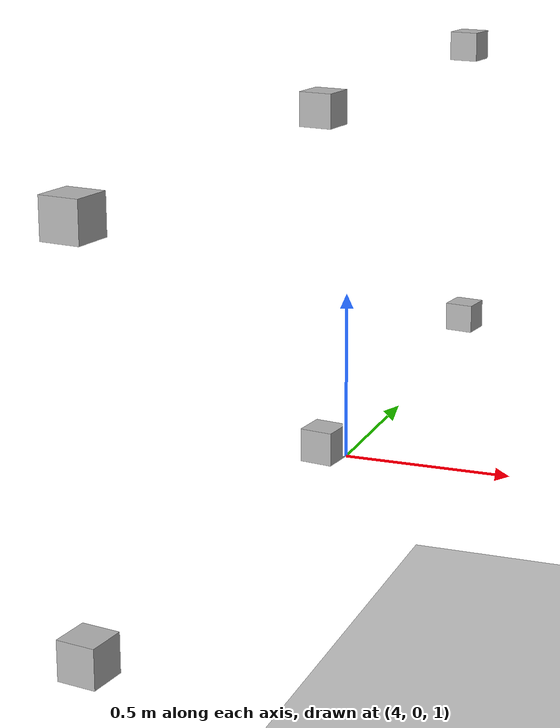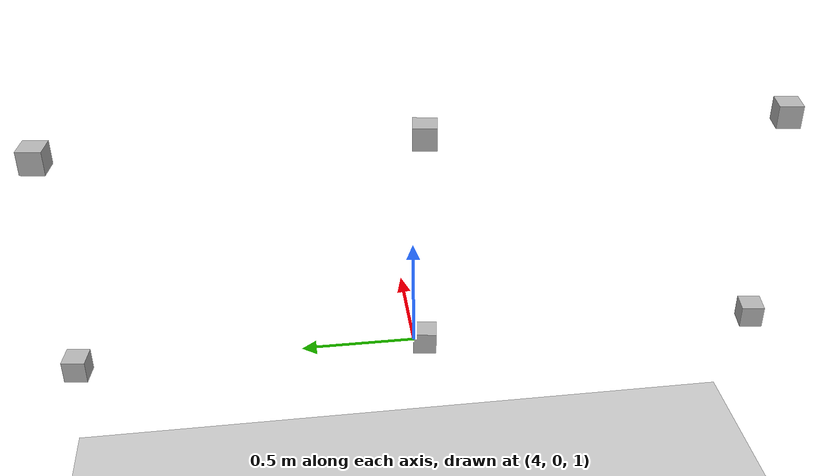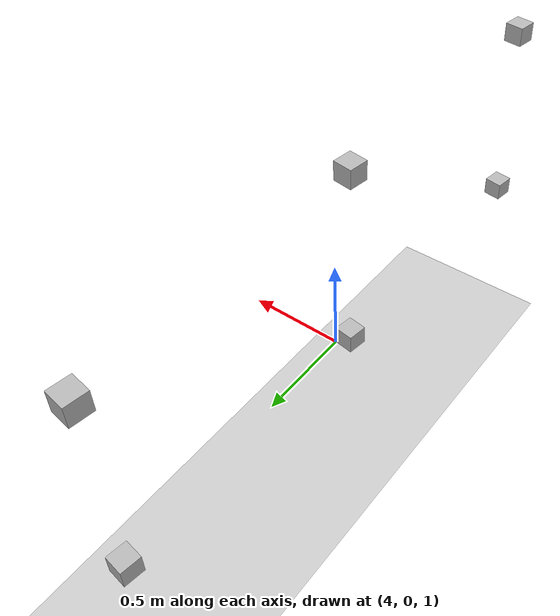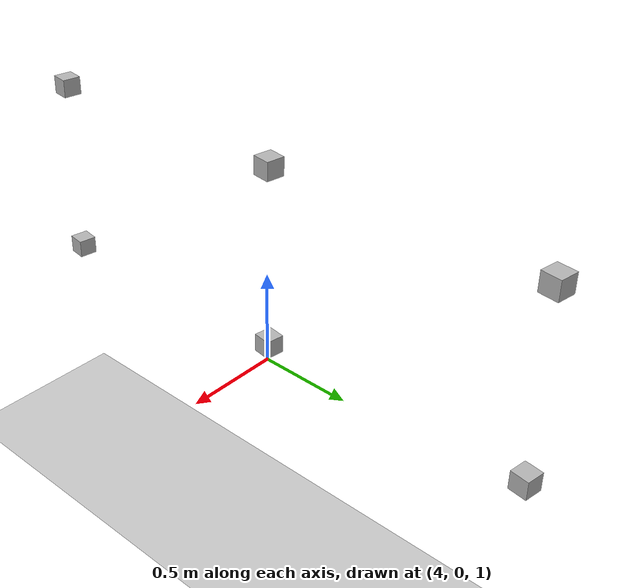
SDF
<?xml version="1.0" ?>
<sdf version="1.6">
  <world name="camera_sensor">
    <physics name="1ms" type="ignored">
      <max_step_size>0.001</max_step_size>
      <real_time_factor>1.0</real_time_factor>
    </physics>
    <plugin
      filename="gz-sim-sensors-system"
      name="gz::sim::systems::Sensors">
      <render_engine>ogre2</render_engine>
    </plugin>

    <scene>
      <ambient>1.0 1.0 1.0</ambient>
      <background>0.8 0.8 0.8</background>
      <grid>true</grid>
    </scene>

    <gz:policies>
      <include_gui_default_plugins>true</include_gui_default_plugins>
    </gz:policies>
    <gui fullscreen="0">

      <plugin filename="MinimalScene" name="3D View">
        <gz-gui>
          <title>3D View</title>
          <property type="bool" key="showTitleBar">false</property>
          <property type="string" key="state">docked</property>
        </gz-gui>
        <engine>ogre2</engine>
        <scene>scene</scene>
        <ambient_light>0.4 0.4 0.4</ambient_light>
        <background_color>0.8 0.8 0.8</background_color>
        <camera_pose>-3 0 3 0 0.5 0</camera_pose>
      </plugin>

      <plugin filename="ImageDisplay" name="Image Display">
        <gz-gui>
          <property key="state" type="string">docked</property>
        </gz-gui>
        <topic>camera1</topic>
      </plugin>
      <plugin filename="ImageDisplay" name="Image Display">
        <gz-gui>
          <property key="state" type="string">docked</property>
        </gz-gui>
        <topic>camera2</topic>
      </plugin>
      <plugin filename="ImageDisplay" name="Image Display">
        <gz-gui>
          <property key="state" type="string">docked</property>
        </gz-gui>
        <topic>camera3</topic>
      </plugin>
      <plugin filename="ImageDisplay" name="Image Display">
        <gz-gui>
          <property key="state" type="string">docked</property>
        </gz-gui>
        <topic>camera4</topic>
      </plugin>
      <plugin filename="ImageDisplay" name="Image Display">
        <gz-gui>
          <property key="state" type="string">docked</property>
        </gz-gui>
        <topic>camera5</topic>
      </plugin>
      <plugin filename="ImageDisplay" name="Image Display">
        <gz-gui>
          <property key="state" type="string">docked</property>
        </gz-gui>
        <topic>camera6</topic>
      </plugin>
    </gui>

    <light type="directional" name="sun">
      <cast_shadows>true</cast_shadows>
      <pose>0 0 10 0 0 0</pose>
      <diffuse>0.8 0.8 0.8 1</diffuse>
      <specular>0.8 0.8 0.8 1</specular>
      <attenuation>
        <range>1000</range>
        <constant>0.9</constant>
        <linear>0.01</linear>
        <quadratic>0.001</quadratic>
      </attenuation>
      <direction>-0.5 0.1 -0.9</direction>
    </light>

    <model name="ground_plane">
      <static>true</static>
      <link name="link">
        <collision name="collision">
          <geometry>
            <plane>
              <normal>0 0 1</normal>
              <size>100 100</size>
            </plane>
          </geometry>
        </collision>
        <visual name="visual">
          <geometry>
            <plane>
              <normal>0 0 1</normal>
              <size>100 100</size>
            </plane>
          </geometry>
          <material>
            <ambient>0.8 0.8 0.8 1</ambient>
            <diffuse>0.8 0.8 0.8 1</diffuse>
            <specular>0.8 0.8 0.8 1</specular>
          </material>
        </visual>
      </link>
    </model>

    <model name="camera1">
      <pose>4 0 1 0 0.0 3.0</pose>
      <link name="link">
        <pose>0.05 0.05 0.05 0 0 0</pose>
        <inertial>
          <mass>0.1</mass>
          <inertia>
            <ixx>0.000166667</ixx>
            <iyy>0.000166667</iyy>
            <izz>0.000166667</izz>
          </inertia>
        </inertial>
        <collision name="collision">
          <geometry>
            <box>
              <size>0.1 0.1 0.1</size>
            </box>
          </geometry>
        </collision>
        <visual name="visual">
          <geometry>
            <box>
              <size>0.1 0.1 0.1</size>
            </box>
          </geometry>
        </visual>
        <sensor name="camera" type="camera">
    <camera>
         <save enabled="true">
              <path>/tmp/vision/Cube/cube1</path>
            </save>
            <horizontal_fov>1.047</horizontal_fov>
            <image>
              <width>320</width>
              <height>240</height>
            </image>
            <clip>
              <near>0.1</near>
              <far>100</far>
            </clip>
          </camera>
          <always_on>1</always_on>
          <update_rate>90</update_rate>
          <visualize>true</visualize>
          <topic>camera1</topic>
        </sensor>
      </link>
    </model>

    <model name="camera2">
      <pose>4 1.5 1 0 0.0 3.0</pose>
      <link name="link">
        <pose>0.05 0.05 0.05 0 0 0</pose>
        <inertial>
          <mass>0.1</mass>
          <inertia>
            <ixx>0.000166667</ixx>
            <iyy>0.000166667</iyy>
            <izz>0.000166667</izz>
          </inertia>
        </inertial>
        <collision name="collision">
          <geometry>
            <box>
              <size>0.1 0.1 0.1</size>
            </box>
          </geometry>
        </collision>
        <visual name="visual">
          <geometry>
            <box>
              <size>0.1 0.1 0.1</size>
            </box>
          </geometry>
        </visual>
        <sensor name="camera" type="camera">
    <camera>
         <save enabled="true">
              <path>/tmp/vision/Cube/cube2</path>
            </save>
            <horizontal_fov>1.047</horizontal_fov>
            <image>
              <width>320</width>
              <height>240</height>
            </image>
            <clip>
              <near>0.1</near>
              <far>100</far>
            </clip>
          </camera>
          <always_on>1</always_on>
          <update_rate>90</update_rate>
          <visualize>true</visualize>
          <topic>camera2</topic>
        </sensor>
      </link>
    </model>

    <model name="camera3">
      <pose>4 -1.5 1 0 0.0 3.0</pose>
      <link name="link">
        <pose>0.05 0.05 0.05 0 0 0</pose>
        <inertial>
          <mass>0.1</mass>
          <inertia>
            <ixx>0.000166667</ixx>
            <iyy>0.000166667</iyy>
            <izz>0.000166667</izz>
          </inertia>
        </inertial>
        <collision name="collision">
          <geometry>
            <box>
              <size>0.1 0.1 0.1</size>
            </box>
          </geometry>
        </collision>
        <visual name="visual">
          <geometry>
            <box>
              <size>0.1 0.1 0.1</size>
            </box>
          </geometry>
        </visual>
        <sensor name="camera" type="camera">
    <camera>
         <save enabled="true">
              <path>/tmp/vision/Cube/cube3</path>
            </save>
            <horizontal_fov>1.047</horizontal_fov>
            <image>
              <width>320</width>
              <height>240</height>
            </image>
            <clip>
              <near>0.1</near>
              <far>100</far>
            </clip>
          </camera>
          <always_on>1</always_on>
          <update_rate>90</update_rate>
          <visualize>true</visualize>
          <topic>camera3</topic>
        </sensor>
      </link>
    </model>

    <model name="camera4">
      <pose>4 0 2 0 0.0 3.0</pose>
      <link name="link">
        <pose>0.05 0.05 0.05 0 0 0</pose>
        <inertial>
          <mass>0.1</mass>
          <inertia>
            <ixx>0.000166667</ixx>
            <iyy>0.000166667</iyy>
            <izz>0.000166667</izz>
          </inertia>
        </inertial>
        <collision name="collision">
          <geometry>
            <box>
              <size>0.1 0.1 0.1</size>
            </box>
          </geometry>
        </collision>
        <visual name="visual">
          <geometry>
            <box>
              <size>0.1 0.1 0.1</size>
            </box>
          </geometry>
        </visual>
        <sensor name="camera" type="camera">
    <camera>
         <save enabled="true">
              <path>/tmp/vision/Cube/cube4</path>
            </save>
            <horizontal_fov>1.047</horizontal_fov>
            <image>
              <width>320</width>
              <height>240</height>
            </image>
            <clip>
              <near>0.1</near>
              <far>100</far>
            </clip>
          </camera>
          <always_on>1</always_on>
          <update_rate>90</update_rate>
          <visualize>true</visualize>
          <topic>camera4</topic>
        </sensor>
      </link>
    </model>

    <model name="camera5">
      <pose>4 1.5 2 0 0.0 3.0</pose>
      <link name="link">
        <pose>0.05 0.05 0.05 0 0 0</pose>
        <inertial>
          <mass>0.1</mass>
          <inertia>
            <ixx>0.000166667</ixx>
            <iyy>0.000166667</iyy>
            <izz>0.000166667</izz>
          </inertia>
        </inertial>
        <collision name="collision">
          <geometry>
            <box>
              <size>0.1 0.1 0.1</size>
            </box>
          </geometry>
        </collision>
        <visual name="visual">
          <geometry>
            <box>
              <size>0.1 0.1 0.1</size>
            </box>
          </geometry>
        </visual>
        <sensor name="camera" type="camera">
    <camera>
         <save enabled="true">
              <path>/tmp/vision/Cube/cube5</path>
            </save>
            <horizontal_fov>1.047</horizontal_fov>
            <image>
              <width>320</width>
              <height>240</height>
            </image>
            <clip>
              <near>0.1</near>
              <far>100</far>
            </clip>
          </camera>
          <always_on>1</always_on>
          <update_rate>90</update_rate>
          <visualize>true</visualize>
          <topic>camera5</topic>
        </sensor>
      </link>
    </model>

    <model name="camera6">
      <pose>4 -1.5 2 0 0.0 3.0</pose>
      <link name="link">
        <pose>0.05 0.05 0.05 0 0 0</pose>
        <inertial>
          <mass>0.1</mass>
          <inertia>
            <ixx>0.000166667</ixx>
            <iyy>0.000166667</iyy>
            <izz>0.000166667</izz>
          </inertia>
        </inertial>
        <collision name="collision">
          <geometry>
            <box>
              <size>0.1 0.1 0.1</size>
            </box>
          </geometry>
        </collision>
        <visual name="visual">
          <geometry>
            <box>
              <size>0.1 0.1 0.1</size>
            </box>
          </geometry>
        </visual>
        <sensor name="camera" type="camera">
    <camera>
         <save enabled="true">
              <path>/tmp/vision/Cube/cube6</path>
            </save>
            <horizontal_fov>1.047</horizontal_fov>
            <image>
              <width>320</width>
              <height>240</height>
            </image>
            <clip>
              <near>0.1</near>
              <far>100</far>
            </clip>
          </camera>
          <always_on>1</always_on>
          <update_rate>90</update_rate>
          <visualize>true</visualize>
          <topic>camera6</topic>
        </sensor>
      </link>
    </model>

  </world>
</sdf>
